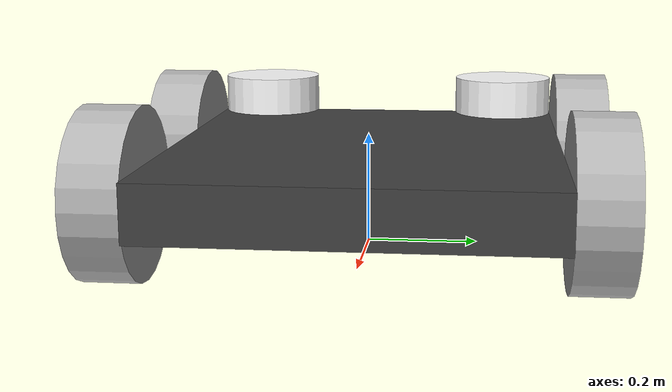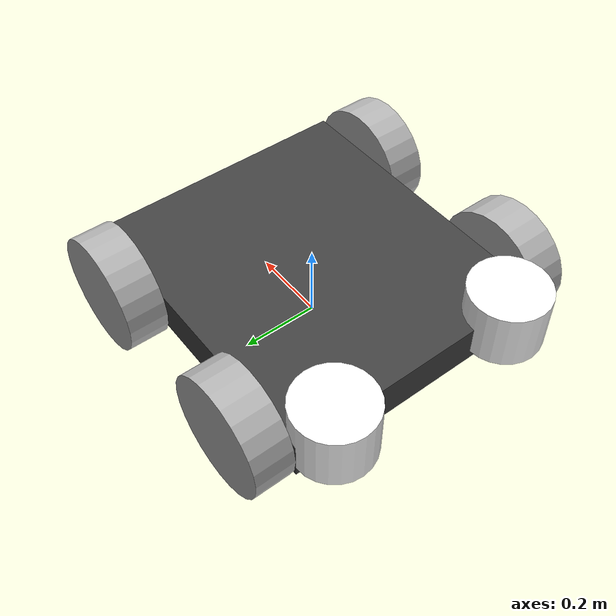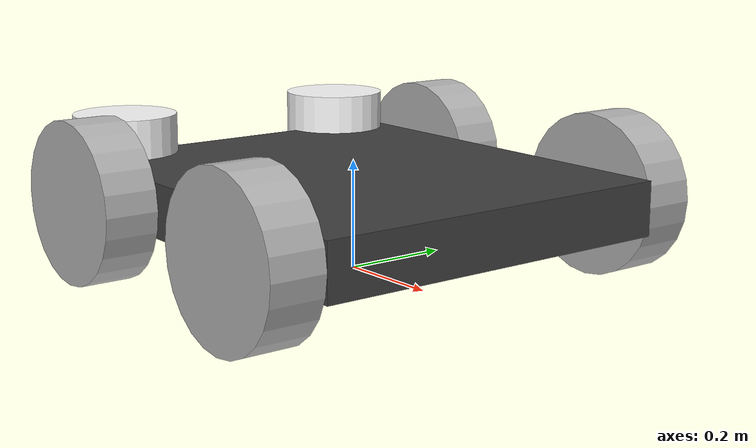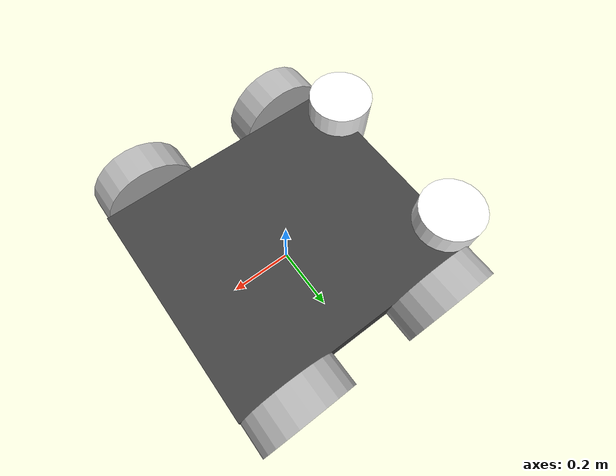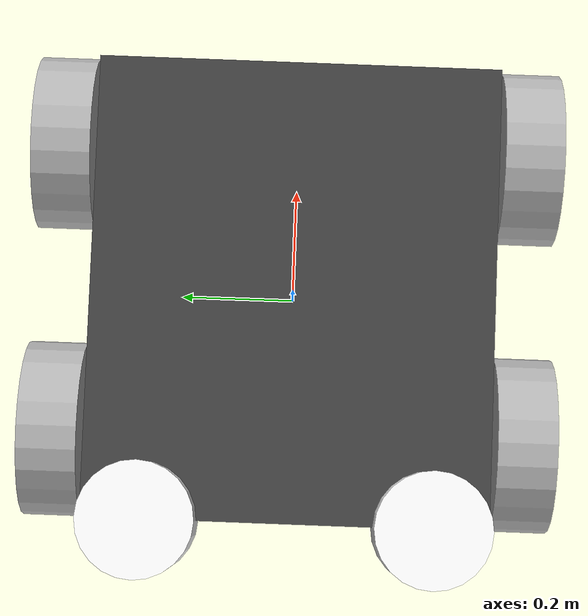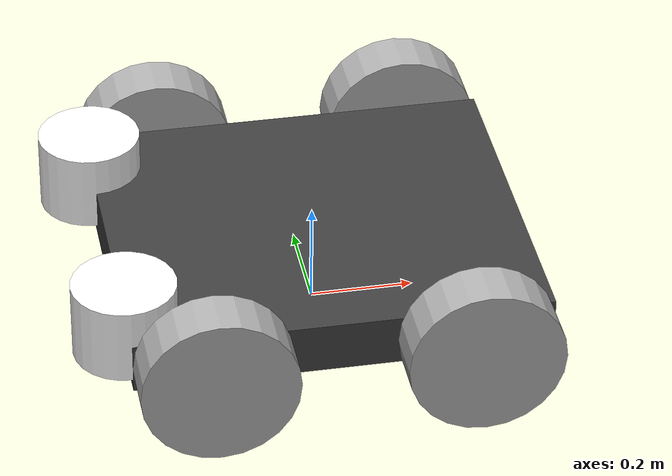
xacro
<?xml version="1.0"?>
<robot xmlns:xacro="http://www.ros.org/wiki/xacro" name="rover">
  <xacro:include filename="$(find maze_escape)/urdf/robot.gazebo" />

  <xacro:property name="c1" value="0.083"/>
  <xacro:property name="c2" value="0.5"/>
  <xacro:property name="mass" value="1"/>
  <xacro:property name="width" value="0.8"/>
  <xacro:property name="height" value="0.1"/>
  <xacro:property name="depth" value="0.7 "/>
  <xacro:property name="radius" value="0.15 "/>

  <!--   #############   BODY    ############   -->

  <!-- BASE LINK AND JOINT -->
  <link name="base_footprint"/>

  <link name="base_link">
    <visual>
      <origin xyz="0 0 0" rpy="0.0 0.0 0.0"/>
      <geometry>
        <box size="${width} ${depth} ${height}" />
      </geometry>
      <material name="DarkGrey">
        <color rgba="0.25 0.25 0.25 1.0"/>
      </material>
    </visual>
    <collision>
      <origin xyz="0 0 0" rpy="0.0 0.0 0.0"/>
      <geometry>
        <box size="${width} ${depth} ${height}" />
      </geometry>
    </collision>
    <inertial>
      <mass value="0.5"/>
      <origin xyz="0.0 0.0 0" rpy="0.0 0.0 0.0"/>
      <inertia  ixx="${c1 * mass * (height * height + depth * depth)}" ixy="0.0" ixz="0.0"
                iyy="${c1 * mass * (height * height + depth * depth)}" iyz="0.0"
                izz="${c1 * mass * (height * height + depth * depth)}"/>
    </inertial>
  </link>

  <joint name="base_joint" type="fixed">
    <origin xyz="0 0 0.135" rpy="0 0 0" />
    <parent link="base_footprint"/>
    <child link="base_link" />
  </joint>

  <!-- WHEEL LINKS AND JOINT -->
  <xacro:macro name="wheel" params="name x y">
    <link name="wheel_${name}_link">
      <inertial>
        <origin xyz="0 0 0" rpy="0 0 0"/>
        <mass value="0.25"/>
        <inertia  ixx="${c2 * mass * (radius*radius)}" ixy="0.0" ixz="0.0"
                  iyy="${c2 * mass * (radius*radius)}" iyz="0.0"
                  izz="${c2 * mass * (radius*radius)}"/>
      </inertial>
      <visual name="wheel_${name}_visual">
        <origin xyz="0 0 0" rpy="1.57 0.0 0.0"/>
        <geometry>
          <cylinder radius="${radius}" length="${height}"/>
        </geometry>
        <material name="LightGrey">
          <color rgba="0.7 0.7 0.7 1.0"/>
        </material>
      </visual>
      <collision>
        <origin xyz="0 0 0" rpy="1.57 0.0 0.0"/>
        <geometry>
          <cylinder radius="${radius}" length="${height}"/>
        </geometry>
      </collision>
    </link>
    <joint name="wheel_${name}_joint" type="continuous">
      <origin xyz="${x} ${y} 0" rpy="0 0 0"/>
      <parent link="base_link"/>
      <child link="wheel_${name}_link"/>
      <axis xyz="0 1 0"/>
      <limit velocity="100.0" effort="1000.0" />
      <dynamics damping="1.0" friction="1.0"/>
    </joint>
  </xacro:macro>

  <!-- Wheel Creating using macros -->
  <xacro:wheel name="rear_right"  x="0.250" y="0.40"/>
  <xacro:wheel name="front_right" x="-0.250" y="0.40"/>
  <xacro:wheel name="front_left"  x="-0.250" y="-0.40"/>
  <xacro:wheel name="rear_left"   x="0.250" y="-0.40"/>

  <!-- HEADLIGHTS -->
  <xacro:macro name="headlight" params="name x y z">
    <link name="headlight_${name}_link">
      <visual>
        <origin xyz="${x} ${y} ${z}" rpy="0 0 0"/>
        <geometry>
          <cylinder radius="0.1" length="0.15"/> <!-- Increased size -->
        </geometry>
        <material name="White">
          <color rgba="1.0 1.0 1.0 1.0"/>
        </material>
      </visual>
      <collision>
        <origin xyz="${x} ${y} ${z}" rpy="0 0 0"/>
        <geometry>
          <cylinder radius="0.1" length="0.15"/> <!-- Increased size -->
        </geometry>
      </collision>
    </link>
    <joint name="headlight_${name}_joint" type="fixed">
      <origin xyz="0 0 0" rpy="0 0 0"/>
      <parent link="base_link"/> <!-- Changed parent to base_link -->
      <child link="headlight_${name}_link"/>
    </joint>
  </xacro:macro>

  <!-- Adding Headlights on the original side with increased size -->
  <xacro:headlight name="left" x="-0.4" y="0.25" z="0.05"/>
  <xacro:headlight name="right" x="-0.4" y="-0.25" z="0.05"/>

</robot>
